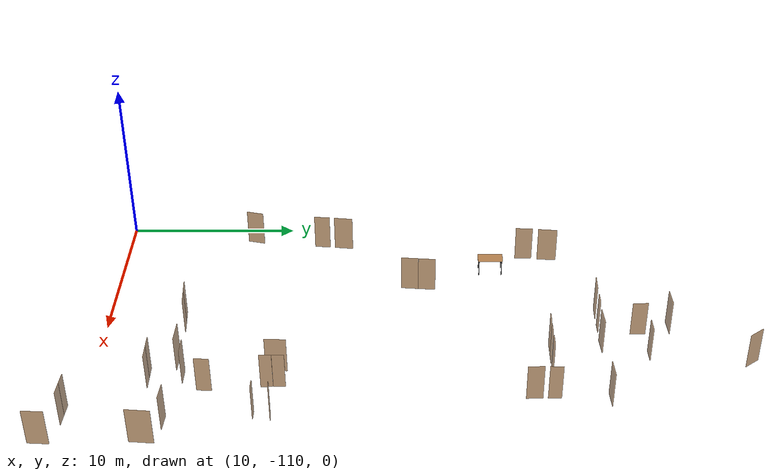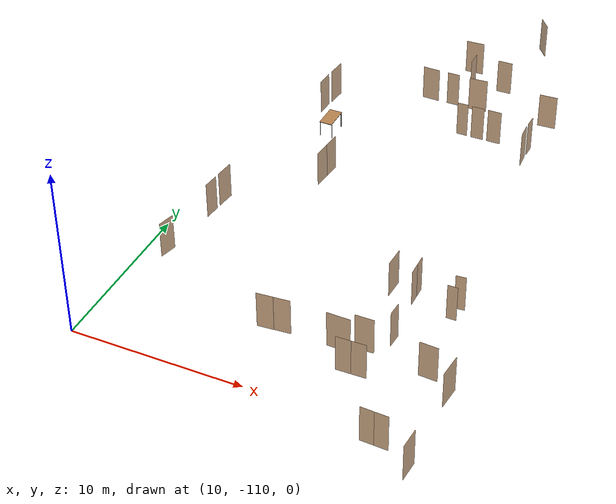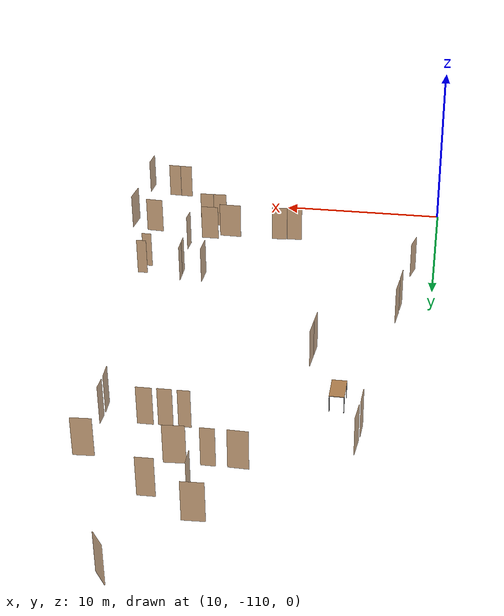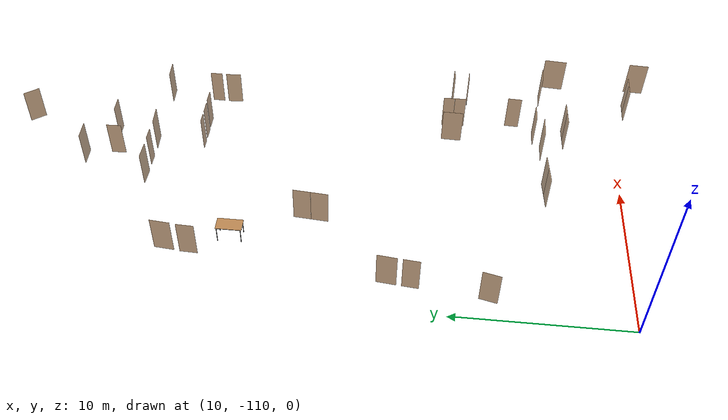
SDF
<sdf version="1.7">
 <world name="world">
  <include><uri>model://sun</uri></include>
  <include>
   <name>OpenRobotics/Table</name>
   <uri>model://Table</uri>
   <pose>14.387834901444366 -87.66442924092927 0.0 0 0 1.5708</pose>
   <static>True</static>
  </include>
  <model name="D52">
   <pose>23.16178288554372 -73.46790534795689 0.0 0 0 2.2272488622468805</pose>
   <link name="right">
    <pose>0 0 1.11 0 0 0</pose>
    <visual name="right_visual">
     <geometry><box><size>1.003676246579932 0.03 2.2</size></box></geometry>
     <material><ambient>0.5 0.25 0 0.6</ambient><diffuse>0.5 0.25 0 0.6</diffuse></material>
    </visual>
    <collision name="right_collision">
     <geometry><box><size>1.003676246579932 0.03 2.2</size></box></geometry>
     <surface><contact><collide_bitmask>0x02</collide_bitmask></contact></surface>
    </collision>
    <inertial>
     <mass>50.0</mass>
     <inertia><ixx>20.17041666666667</ixx><iyy>24.364025033119923</iyy><izz>4.201108366453252</izz></inertia>
    </inertial>
   </link>
   <joint name="right_joint" type="revolute">
    <parent>world</parent>
    <child>right</child>
    <axis><xyz>0 0 1</xyz><limit><lower>0</lower><upper>1.57</upper></limit></axis>
    <pose>0.506838123289966 0 0 0 0 0</pose>
   </joint>
   <plugin name="door" filename="libdoor.so">
    <v_max_door>0.5</v_max_door>
    <a_max_door>0.3</a_max_door>
    <a_nom_door>0.15</a_nom_door>
    <dx_min_door>0.01</dx_min_door>
    <f_max_door>500.0</f_max_door>
    <door name="D52" type="SwingDoor" left_joint_name="empty_joint" right_joint_name="right_joint"/>
   </plugin>
  </model>
  <model name="D53">
   <pose>20.54748252680959 -79.49043257939803 0.0 0 0 -1.553514729007234</pose>
   <link name="right">
    <pose>0 0 1.11 0 0 0</pose>
    <visual name="right_visual">
     <geometry><box><size>0.8756613087539077 0.03 2.2</size></box></geometry>
     <material><ambient>0.5 0.25 0 0.6</ambient><diffuse>0.5 0.25 0 0.6</diffuse></material>
    </visual>
    <collision name="right_collision">
     <geometry><box><size>0.8756613087539077 0.03 2.2</size></box></geometry>
     <surface><contact><collide_bitmask>0x02</collide_bitmask></contact></surface>
    </collision>
    <inertial>
     <mass>50.0</mass>
     <inertia><ixx>20.17041666666667</ixx><iyy>23.361594698535864</iyy><izz>3.1986780318691936</izz></inertia>
    </inertial>
   </link>
   <joint name="right_joint" type="revolute">
    <parent>world</parent>
    <child>right</child>
    <axis><xyz>0 0 1</xyz><limit><lower>0</lower><upper>1.57</upper></limit></axis>
    <pose>0.44283065437695385 0 0 0 0 0</pose>
   </joint>
   <plugin name="door" filename="libdoor.so">
    <v_max_door>0.5</v_max_door>
    <a_max_door>0.3</a_max_door>
    <a_nom_door>0.15</a_nom_door>
    <dx_min_door>0.01</dx_min_door>
    <f_max_door>500.0</f_max_door>
    <door name="D53" type="SwingDoor" left_joint_name="empty_joint" right_joint_name="right_joint"/>
   </plugin>
  </model>
  <model name="D54">
   <pose>19.959548369810665 -77.67765449023244 0.0 0 0 0.04237358821543699</pose>
   <link name="right">
    <pose>0 0 1.11 0 0 0</pose>
    <visual name="right_visual">
     <geometry><box><size>1.1327698787081102 0.03 2.2</size></box></geometry>
     <material><ambient>0.5 0.25 0 0.6</ambient><diffuse>0.5 0.25 0 0.6</diffuse></material>
    </visual>
    <collision name="right_collision">
     <geometry><box><size>1.1327698787081102 0.03 2.2</size></box></geometry>
     <surface><contact><collide_bitmask>0x02</collide_bitmask></contact></surface>
    </collision>
    <inertial>
     <mass>50.0</mass>
     <inertia><ixx>20.17041666666667</ixx><iyy>25.513198325451615</iyy><izz>5.350281658784945</izz></inertia>
    </inertial>
   </link>
   <joint name="right_joint" type="revolute">
    <parent>world</parent>
    <child>right</child>
    <axis><xyz>0 0 -1</xyz><limit><lower>0</lower><upper>1.57</upper></limit></axis>
    <pose>0.5713849393540551 0 0 0 0 0</pose>
   </joint>
   <plugin name="door" filename="libdoor.so">
    <v_max_door>0.5</v_max_door>
    <a_max_door>0.3</a_max_door>
    <a_nom_door>0.15</a_nom_door>
    <dx_min_door>0.01</dx_min_door>
    <f_max_door>500.0</f_max_door>
    <door name="D54" type="SwingDoor" left_joint_name="empty_joint" right_joint_name="right_joint"/>
   </plugin>
  </model>
  <model name="D55">
   <pose>22.493356393128437 -79.11841060944201 0.0 0 0 -3.125994067410913</pose>
   <link name="right">
    <pose>0 0 1.11 0 0 0</pose>
    <visual name="right_visual">
     <geometry><box><size>0.9057967541684167 0.03 2.2</size></box></geometry>
     <material><ambient>0.5 0.25 0 0.6</ambient><diffuse>0.5 0.25 0 0.6</diffuse></material>
    </visual>
    <collision name="right_collision">
     <geometry><box><size>0.9057967541684167 0.03 2.2</size></box></geometry>
     <surface><contact><collide_bitmask>0x02</collide_bitmask></contact></surface>
    </collision>
    <inertial>
     <mass>50.0</mass>
     <inertia><ixx>20.17041666666667</ixx><iyy>23.5852823327585</iyy><izz>3.4223656660918294</izz></inertia>
    </inertial>
   </link>
   <joint name="right_joint" type="revolute">
    <parent>world</parent>
    <child>right</child>
    <axis><xyz>0 0 1</xyz><limit><lower>0</lower><upper>1.57</upper></limit></axis>
    <pose>0.45789837708420833 0 0 0 0 0</pose>
   </joint>
   <plugin name="door" filename="libdoor.so">
    <v_max_door>0.5</v_max_door>
    <a_max_door>0.3</a_max_door>
    <a_nom_door>0.15</a_nom_door>
    <dx_min_door>0.01</dx_min_door>
    <f_max_door>500.0</f_max_door>
    <door name="D55" type="SwingDoor" left_joint_name="empty_joint" right_joint_name="right_joint"/>
   </plugin>
  </model>
  <model name="D56">
   <pose>26.222022119433127 -81.71043386407851 0.0 0 0 0.051731397817296784</pose>
   <link name="right">
    <pose>0 0 1.11 0 0 0</pose>
    <visual name="right_visual">
     <geometry><box><size>1.0884326019941069 0.03 2.2</size></box></geometry>
     <material><ambient>0.5 0.25 0 0.6</ambient><diffuse>0.5 0.25 0 0.6</diffuse></material>
    </visual>
    <collision name="right_collision">
     <geometry><box><size>1.0884326019941069 0.03 2.2</size></box></geometry>
     <surface><contact><collide_bitmask>0x02</collide_bitmask></contact></surface>
    </collision>
    <inertial>
     <mass>50.0</mass>
     <inertia><ixx>20.17041666666667</ixx><iyy>25.10285637118193</iyy><izz>4.9399397045152575</izz></inertia>
    </inertial>
   </link>
   <joint name="right_joint" type="revolute">
    <parent>world</parent>
    <child>right</child>
    <axis><xyz>0 0 1</xyz><limit><lower>0</lower><upper>1.57</upper></limit></axis>
    <pose>0.5492163009970534 0 0 0 0 0</pose>
   </joint>
   <plugin name="door" filename="libdoor.so">
    <v_max_door>0.5</v_max_door>
    <a_max_door>0.3</a_max_door>
    <a_nom_door>0.15</a_nom_door>
    <dx_min_door>0.01</dx_min_door>
    <f_max_door>500.0</f_max_door>
    <door name="D56" type="SwingDoor" left_joint_name="empty_joint" right_joint_name="right_joint"/>
   </plugin>
  </model>
  <model name="D57">
   <pose>21.69795607583101 -81.73662221546044 0.0 0 0 -3.079971809538745</pose>
   <link name="right">
    <pose>0 0 1.11 0 0 0</pose>
    <visual name="right_visual">
     <geometry><box><size>1.1332336975049053 0.03 2.2</size></box></geometry>
     <material><ambient>0.5 0.25 0 0.6</ambient><diffuse>0.5 0.25 0 0.6</diffuse></material>
    </visual>
    <collision name="right_collision">
     <geometry><box><size>1.1332336975049053 0.03 2.2</size></box></geometry>
     <surface><contact><collide_bitmask>0x02</collide_bitmask></contact></surface>
    </collision>
    <inertial>
     <mass>50.0</mass>
     <inertia><ixx>20.17041666666667</ixx><iyy>25.517577554836</iyy><izz>5.35466088816933</izz></inertia>
    </inertial>
   </link>
   <joint name="right_joint" type="revolute">
    <parent>world</parent>
    <child>right</child>
    <axis><xyz>0 0 -1</xyz><limit><lower>0</lower><upper>1.57</upper></limit></axis>
    <pose>0.5716168487524527 0 0 0 0 0</pose>
   </joint>
   <plugin name="door" filename="libdoor.so">
    <v_max_door>0.5</v_max_door>
    <a_max_door>0.3</a_max_door>
    <a_nom_door>0.15</a_nom_door>
    <dx_min_door>0.01</dx_min_door>
    <f_max_door>500.0</f_max_door>
    <door name="D57" type="SwingDoor" left_joint_name="empty_joint" right_joint_name="right_joint"/>
   </plugin>
  </model>
  <model name="D58">
   <pose>20.058293192553833 -81.74608856758337 0.0 0 0 3.141592653589793</pose>
   <link name="right">
    <pose>0 0 1.11 0 0 0</pose>
    <visual name="right_visual">
     <geometry><box><size>0.7458343665082603 0.03 2.2</size></box></geometry>
     <material><ambient>0.5 0.25 0 0.6</ambient><diffuse>0.5 0.25 0 0.6</diffuse></material>
    </visual>
    <collision name="right_collision">
     <geometry><box><size>0.7458343665082603 0.03 2.2</size></box></geometry>
     <surface><contact><collide_bitmask>0x02</collide_bitmask></contact></surface>
    </collision>
    <inertial>
     <mass>50.0</mass>
     <inertia><ixx>20.17041666666667</ixx><iyy>22.48445375943658</iyy><izz>2.3215370927699084</izz></inertia>
    </inertial>
   </link>
   <joint name="right_joint" type="revolute">
    <parent>world</parent>
    <child>right</child>
    <axis><xyz>0 0 -1</xyz><limit><lower>0</lower><upper>1.57</upper></limit></axis>
    <pose>0.37791718325413015 0 0 0 0 0</pose>
   </joint>
   <plugin name="door" filename="libdoor.so">
    <v_max_door>0.5</v_max_door>
    <a_max_door>0.3</a_max_door>
    <a_nom_door>0.15</a_nom_door>
    <dx_min_door>0.01</dx_min_door>
    <f_max_door>500.0</f_max_door>
    <door name="D58" type="SwingDoor" left_joint_name="empty_joint" right_joint_name="right_joint"/>
   </plugin>
  </model>
  <model name="D59">
   <pose>18.587210735705 -81.74569177438062 0.0 0 0 3.111163087370451</pose>
   <link name="right">
    <pose>0 0 1.11 0 0 0</pose>
    <visual name="right_visual">
     <geometry><box><size>1.051970134316209 0.03 2.2</size></box></geometry>
     <material><ambient>0.5 0.25 0 0.6</ambient><diffuse>0.5 0.25 0 0.6</diffuse></material>
    </visual>
    <collision name="right_collision">
     <geometry><box><size>1.051970134316209 0.03 2.2</size></box></geometry>
     <surface><contact><collide_bitmask>0x02</collide_bitmask></contact></surface>
    </collision>
    <inertial>
     <mass>50.0</mass>
     <inertia><ixx>20.17041666666667</ixx><iyy>24.777671514555266</iyy><izz>4.614754847888594</izz></inertia>
    </inertial>
   </link>
   <joint name="right_joint" type="revolute">
    <parent>world</parent>
    <child>right</child>
    <axis><xyz>0 0 1</xyz><limit><lower>0</lower><upper>1.57</upper></limit></axis>
    <pose>0.5309850671581045 0 0 0 0 0</pose>
   </joint>
   <plugin name="door" filename="libdoor.so">
    <v_max_door>0.5</v_max_door>
    <a_max_door>0.3</a_max_door>
    <a_nom_door>0.15</a_nom_door>
    <dx_min_door>0.01</dx_min_door>
    <f_max_door>500.0</f_max_door>
    <door name="D59" type="SwingDoor" left_joint_name="empty_joint" right_joint_name="right_joint"/>
   </plugin>
  </model>
  <model name="D60">
   <pose>26.10547828730916 -84.71347819202771 0.0 0 0 -1.596388787537198</pose>
   <link name="right">
    <pose>0 0 1.11 0 0 0</pose>
    <visual name="right_visual">
     <geometry><box><size>0.7342876711624733 0.03 2.2</size></box></geometry>
     <material><ambient>0.5 0.25 0 0.6</ambient><diffuse>0.5 0.25 0 0.6</diffuse></material>
    </visual>
    <collision name="right_collision">
     <geometry><box><size>0.7342876711624733 0.03 2.2</size></box></geometry>
     <surface><contact><collide_bitmask>0x02</collide_bitmask></contact></surface>
    </collision>
    <inertial>
     <mass>50.0</mass>
     <inertia><ixx>20.17041666666667</ixx><iyy>22.41324326675504</iyy><izz>2.250326600088369</izz></inertia>
    </inertial>
   </link>
   <joint name="right_joint" type="revolute">
    <parent>world</parent>
    <child>right</child>
    <axis><xyz>0 0 1</xyz><limit><lower>0</lower><upper>1.57</upper></limit></axis>
    <pose>0.37214383558123665 0 0 0 0 0</pose>
   </joint>
   <plugin name="door" filename="libdoor.so">
    <v_max_door>0.5</v_max_door>
    <a_max_door>0.3</a_max_door>
    <a_nom_door>0.15</a_nom_door>
    <dx_min_door>0.01</dx_min_door>
    <f_max_door>500.0</f_max_door>
    <door name="D60" type="SwingDoor" left_joint_name="empty_joint" right_joint_name="right_joint"/>
   </plugin>
  </model>
  <model name="D61">
   <pose>26.107745677039198 -85.80998786547421 0.0 0 0 -1.5183741289566897</pose>
   <link name="right">
    <pose>0 0 1.11 0 0 0</pose>
    <visual name="right_visual">
     <geometry><box><size>0.9160270113489877 0.03 2.2</size></box></geometry>
     <material><ambient>0.5 0.25 0 0.6</ambient><diffuse>0.5 0.25 0 0.6</diffuse></material>
    </visual>
    <collision name="right_collision">
     <geometry><box><size>0.9160270113489877 0.03 2.2</size></box></geometry>
     <surface><contact><collide_bitmask>0x02</collide_bitmask></contact></surface>
    </collision>
    <inertial>
     <mass>50.0</mass>
     <inertia><ixx>20.17041666666667</ixx><iyy>23.662939523004</iyy><izz>3.5000228563373272</izz></inertia>
    </inertial>
   </link>
   <joint name="right_joint" type="revolute">
    <parent>world</parent>
    <child>right</child>
    <axis><xyz>0 0 1</xyz><limit><lower>0</lower><upper>1.57</upper></limit></axis>
    <pose>0.46301350567449384 0 0 0 0 0</pose>
   </joint>
   <plugin name="door" filename="libdoor.so">
    <v_max_door>0.5</v_max_door>
    <a_max_door>0.3</a_max_door>
    <a_nom_door>0.15</a_nom_door>
    <dx_min_door>0.01</dx_min_door>
    <f_max_door>500.0</f_max_door>
    <door name="D61" type="SwingDoor" left_joint_name="empty_joint" right_joint_name="right_joint"/>
   </plugin>
  </model>
  <model name="D62">
   <pose>23.836217960743603 -84.65395921161421 0.0 0 0 -0.002274852224701545</pose>
   <link name="right">
    <pose>0 0 1.11 0 0 0</pose>
    <visual name="right_visual">
     <geometry><box><size>0.8372123647697907 0.03 2.2</size></box></geometry>
     <material><ambient>0.5 0.25 0 0.6</ambient><diffuse>0.5 0.25 0 0.6</diffuse></material>
    </visual>
    <collision name="right_collision">
     <geometry><box><size>0.8372123647697907 0.03 2.2</size></box></geometry>
     <surface><contact><collide_bitmask>0x02</collide_bitmask></contact></surface>
    </collision>
    <inertial>
     <mass>50.0</mass>
     <inertia><ixx>20.17041666666667</ixx><iyy>23.087185598847608</iyy><izz>2.924268932180938</izz></inertia>
    </inertial>
   </link>
   <joint name="right_joint" type="revolute">
    <parent>world</parent>
    <child>right</child>
    <axis><xyz>0 0 1</xyz><limit><lower>0</lower><upper>1.57</upper></limit></axis>
    <pose>0.42360618238489534 0 0 0 0 0</pose>
   </joint>
   <plugin name="door" filename="libdoor.so">
    <v_max_door>0.5</v_max_door>
    <a_max_door>0.3</a_max_door>
    <a_nom_door>0.15</a_nom_door>
    <dx_min_door>0.01</dx_min_door>
    <f_max_door>500.0</f_max_door>
    <door name="D62" type="SwingDoor" left_joint_name="empty_joint" right_joint_name="right_joint"/>
   </plugin>
  </model>
  <model name="D63">
   <pose>22.78386570228959 -84.6684138211432 0.0 0 0 0.0</pose>
   <link name="right">
    <pose>0 0 1.11 0 0 0</pose>
    <visual name="right_visual">
     <geometry><box><size>0.7649938097270821 0.03 2.2</size></box></geometry>
     <material><ambient>0.5 0.25 0 0.6</ambient><diffuse>0.5 0.25 0 0.6</diffuse></material>
    </visual>
    <collision name="right_collision">
     <geometry><box><size>0.7649938097270821 0.03 2.2</size></box></geometry>
     <surface><contact><collide_bitmask>0x02</collide_bitmask></contact></surface>
    </collision>
    <inertial>
     <mass>50.0</mass>
     <inertia><ixx>20.17041666666667</ixx><iyy>22.605064703836483</iyy><izz>2.4421480371698134</izz></inertia>
    </inertial>
   </link>
   <joint name="right_joint" type="revolute">
    <parent>world</parent>
    <child>right</child>
    <axis><xyz>0 0 1</xyz><limit><lower>0</lower><upper>1.57</upper></limit></axis>
    <pose>0.38749690486354105 0 0 0 0 0</pose>
   </joint>
   <plugin name="door" filename="libdoor.so">
    <v_max_door>0.5</v_max_door>
    <a_max_door>0.3</a_max_door>
    <a_nom_door>0.15</a_nom_door>
    <dx_min_door>0.01</dx_min_door>
    <f_max_door>500.0</f_max_door>
    <door name="D63" type="SwingDoor" left_joint_name="empty_joint" right_joint_name="right_joint"/>
   </plugin>
  </model>
  <model name="D64">
   <pose>21.80338969827779 -84.66376567219662 0.0 0 0 0.0</pose>
   <link name="right">
    <pose>0 0 1.11 0 0 0</pose>
    <visual name="right_visual">
     <geometry><box><size>0.658086383955778 0.03 2.2</size></box></geometry>
     <material><ambient>0.5 0.25 0 0.6</ambient><diffuse>0.5 0.25 0 0.6</diffuse></material>
    </visual>
    <collision name="right_collision">
     <geometry><box><size>0.658086383955778 0.03 2.2</size></box></geometry>
     <surface><contact><collide_bitmask>0x02</collide_bitmask></contact></surface>
    </collision>
    <inertial>
     <mass>50.0</mass>
     <inertia><ixx>20.17041666666667</ixx><iyy>21.97115703644997</iyy><izz>1.808240369783299</izz></inertia>
    </inertial>
   </link>
   <joint name="right_joint" type="revolute">
    <parent>world</parent>
    <child>right</child>
    <axis><xyz>0 0 1</xyz><limit><lower>0</lower><upper>1.57</upper></limit></axis>
    <pose>0.334043191977889 0 0 0 0 0</pose>
   </joint>
   <plugin name="door" filename="libdoor.so">
    <v_max_door>0.5</v_max_door>
    <a_max_door>0.3</a_max_door>
    <a_nom_door>0.15</a_nom_door>
    <dx_min_door>0.01</dx_min_door>
    <f_max_door>500.0</f_max_door>
    <door name="D64" type="SwingDoor" left_joint_name="empty_joint" right_joint_name="right_joint"/>
   </plugin>
  </model>
  <model name="D66">
   <pose>13.12393518117778 -84.1144338253516 0.0 0 0 -1.664618006042261</pose>
   <link name="right">
    <pose>0 0 1.11 0 0 0</pose>
    <visual name="right_visual">
     <geometry><box><size>1.1456695836033401 0.03 2.2</size></box></geometry>
     <material><ambient>0.5 0.25 0 0.6</ambient><diffuse>0.5 0.25 0 0.6</diffuse></material>
    </visual>
    <collision name="right_collision">
     <geometry><box><size>1.1456695836033401 0.03 2.2</size></box></geometry>
     <surface><contact><collide_bitmask>0x02</collide_bitmask></contact></surface>
    </collision>
    <inertial>
     <mass>50.0</mass>
     <inertia><ixx>20.17041666666667</ixx><iyy>25.63566164497438</iyy><izz>5.472744978307712</izz></inertia>
    </inertial>
   </link>
   <joint name="right_joint" type="revolute">
    <parent>world</parent>
    <child>right</child>
    <axis><xyz>0 0 -1</xyz><limit><lower>0</lower><upper>1.57</upper></limit></axis>
    <pose>0.5778347918016701 0 0 0 0 0</pose>
   </joint>
   <plugin name="door" filename="libdoor.so">
    <v_max_door>0.5</v_max_door>
    <a_max_door>0.3</a_max_door>
    <a_nom_door>0.15</a_nom_door>
    <dx_min_door>0.01</dx_min_door>
    <f_max_door>500.0</f_max_door>
    <door name="D66" type="SwingDoor" left_joint_name="empty_joint" right_joint_name="right_joint"/>
   </plugin>
  </model>
  <model name="D67">
   <pose>12.990215871848774 -85.54203908412694 0.0 0 0 1.5266714472959082</pose>
   <link name="right">
    <pose>0 0 1.11 0 0 0</pose>
    <visual name="right_visual">
     <geometry><box><size>1.0129081934480677 0.03 2.2</size></box></geometry>
     <material><ambient>0.5 0.25 0 0.6</ambient><diffuse>0.5 0.25 0 0.6</diffuse></material>
    </visual>
    <collision name="right_collision">
     <geometry><box><size>1.0129081934480677 0.03 2.2</size></box></geometry>
     <surface><contact><collide_bitmask>0x02</collide_bitmask></contact></surface>
    </collision>
    <inertial>
     <mass>50.0</mass>
     <inertia><ixx>20.17041666666667</ixx><iyy>24.441595868142624</iyy><izz>4.27867920147595</izz></inertia>
    </inertial>
   </link>
   <joint name="right_joint" type="revolute">
    <parent>world</parent>
    <child>right</child>
    <axis><xyz>0 0 1</xyz><limit><lower>0</lower><upper>1.57</upper></limit></axis>
    <pose>0.5114540967240339 0 0 0 0 0</pose>
   </joint>
   <plugin name="door" filename="libdoor.so">
    <v_max_door>0.5</v_max_door>
    <a_max_door>0.3</a_max_door>
    <a_nom_door>0.15</a_nom_door>
    <dx_min_door>0.01</dx_min_door>
    <f_max_door>500.0</f_max_door>
    <door name="D67" type="SwingDoor" left_joint_name="empty_joint" right_joint_name="right_joint"/>
   </plugin>
  </model>
  <model name="D68">
   <pose>11.903455974241428 -96.67197505196582 0.0 0 0 -1.6828701030195223</pose>
   <link name="right">
    <pose>0 0 1.11 0 0 0</pose>
    <visual name="right_visual">
     <geometry><box><size>1.121269064989252 0.03 2.2</size></box></geometry>
     <material><ambient>0.5 0.25 0 0.6</ambient><diffuse>0.5 0.25 0 0.6</diffuse></material>
    </visual>
    <collision name="right_collision">
     <geometry><box><size>1.121269064989252 0.03 2.2</size></box></geometry>
     <surface><contact><collide_bitmask>0x02</collide_bitmask></contact></surface>
    </collision>
    <inertial>
     <mass>50.0</mass>
     <inertia><ixx>20.17041666666667</ixx><iyy>25.40518465042447</iyy><izz>5.242267983757798</izz></inertia>
    </inertial>
   </link>
   <joint name="right_joint" type="revolute">
    <parent>world</parent>
    <child>right</child>
    <axis><xyz>0 0 -1</xyz><limit><lower>0</lower><upper>1.57</upper></limit></axis>
    <pose>0.565634532494626 0 0 0 0 0</pose>
   </joint>
   <plugin name="door" filename="libdoor.so">
    <v_max_door>0.5</v_max_door>
    <a_max_door>0.3</a_max_door>
    <a_nom_door>0.15</a_nom_door>
    <dx_min_door>0.01</dx_min_door>
    <f_max_door>500.0</f_max_door>
    <door name="D68" type="SwingDoor" left_joint_name="empty_joint" right_joint_name="right_joint"/>
   </plugin>
  </model>
  <model name="D69">
   <pose>11.764691722763086 -97.99340978663213 0.0 0 0 1.4711512987692263</pose>
   <link name="right">
    <pose>0 0 1.11 0 0 0</pose>
    <visual name="right_visual">
     <geometry><box><size>0.9450002759026014 0.03 2.2</size></box></geometry>
     <material><ambient>0.5 0.25 0 0.6</ambient><diffuse>0.5 0.25 0 0.6</diffuse></material>
    </visual>
    <collision name="right_collision">
     <geometry><box><size>0.9450002759026014 0.03 2.2</size></box></geometry>
     <surface><contact><collide_bitmask>0x02</collide_bitmask></contact></surface>
    </collision>
    <inertial>
     <mass>50.0</mass>
     <inertia><ixx>20.17041666666667</ixx><iyy>23.887606339399976</iyy><izz>3.7246896727333034</izz></inertia>
    </inertial>
   </link>
   <joint name="right_joint" type="revolute">
    <parent>world</parent>
    <child>right</child>
    <axis><xyz>0 0 1</xyz><limit><lower>0</lower><upper>1.57</upper></limit></axis>
    <pose>0.4775001379513007 0 0 0 0 0</pose>
   </joint>
   <plugin name="door" filename="libdoor.so">
    <v_max_door>0.5</v_max_door>
    <a_max_door>0.3</a_max_door>
    <a_nom_door>0.15</a_nom_door>
    <dx_min_door>0.01</dx_min_door>
    <f_max_door>500.0</f_max_door>
    <door name="D69" type="SwingDoor" left_joint_name="empty_joint" right_joint_name="right_joint"/>
   </plugin>
  </model>
  <model name="D70">
   <pose>23.828452150918224 -99.92443225021921 0.0 0 0 -1.6090097183700514</pose>
   <link name="right">
    <pose>0 0 1.11 0 0 0</pose>
    <visual name="right_visual">
     <geometry><box><size>1.2066625890138791 0.03 2.2</size></box></geometry>
     <material><ambient>0.5 0.25 0 0.6</ambient><diffuse>0.5 0.25 0 0.6</diffuse></material>
    </visual>
    <collision name="right_collision">
     <geometry><box><size>1.2066625890138791 0.03 2.2</size></box></geometry>
     <surface><contact><collide_bitmask>0x02</collide_bitmask></contact></surface>
    </collision>
    <inertial>
     <mass>50.0</mass>
     <inertia><ixx>20.17041666666667</ixx><iyy>26.23347751552366</iyy><izz>6.07056084885699</izz></inertia>
    </inertial>
   </link>
   <joint name="right_joint" type="revolute">
    <parent>world</parent>
    <child>right</child>
    <axis><xyz>0 0 1</xyz><limit><lower>0</lower><upper>1.57</upper></limit></axis>
    <pose>0.6083312945069396 0 0 0 0 0</pose>
   </joint>
   <plugin name="door" filename="libdoor.so">
    <v_max_door>0.5</v_max_door>
    <a_max_door>0.3</a_max_door>
    <a_nom_door>0.15</a_nom_door>
    <dx_min_door>0.01</dx_min_door>
    <f_max_door>500.0</f_max_door>
    <door name="D70" type="SwingDoor" left_joint_name="empty_joint" right_joint_name="right_joint"/>
   </plugin>
  </model>
  <model name="D71">
   <pose>27.629334240124628 -99.95827304194003 0.0 0 0 0.08312523368021976</pose>
   <link name="right">
    <pose>0 0 1.11 0 0 0</pose>
    <visual name="right_visual">
     <geometry><box><size>0.5784923667968813 0.03 2.2</size></box></geometry>
     <material><ambient>0.5 0.25 0 0.6</ambient><diffuse>0.5 0.25 0 0.6</diffuse></material>
    </visual>
    <collision name="right_collision">
     <geometry><box><size>0.5784923667968813 0.03 2.2</size></box></geometry>
     <surface><contact><collide_bitmask>0x02</collide_bitmask></contact></surface>
    </collision>
    <inertial>
     <mass>50.0</mass>
     <inertia><ixx>20.17041666666667</ixx><iyy>21.561055910176076</iyy><izz>1.3981392435094064</izz></inertia>
    </inertial>
   </link>
   <joint name="right_joint" type="revolute">
    <parent>world</parent>
    <child>right</child>
    <axis><xyz>0 0 -1</xyz><limit><lower>0</lower><upper>1.57</upper></limit></axis>
    <pose>0.29424618339844066 0 0 0 0 0</pose>
   </joint>
   <plugin name="door" filename="libdoor.so">
    <v_max_door>0.5</v_max_door>
    <a_max_door>0.3</a_max_door>
    <a_nom_door>0.15</a_nom_door>
    <dx_min_door>0.01</dx_min_door>
    <f_max_door>500.0</f_max_door>
    <door name="D71" type="SwingDoor" left_joint_name="empty_joint" right_joint_name="right_joint"/>
   </plugin>
  </model>
  <model name="D72">
   <pose>27.518855675528517 -100.8774161537543 0.0 0 0 -0.018328680504606624</pose>
   <link name="right">
    <pose>0 0 1.11 0 0 0</pose>
    <visual name="right_visual">
     <geometry><box><size>0.5714563914315185 0.03 2.2</size></box></geometry>
     <material><ambient>0.5 0.25 0 0.6</ambient><diffuse>0.5 0.25 0 0.6</diffuse></material>
    </visual>
    <collision name="right_collision">
     <geometry><box><size>0.5714563914315185 0.03 2.2</size></box></geometry>
     <surface><contact><collide_bitmask>0x02</collide_bitmask></contact></surface>
    </collision>
    <inertial>
     <mass>50.0</mass>
     <inertia><ixx>20.17041666666667</ixx><iyy>21.52734336378306</iyy><izz>1.3644266971163872</izz></inertia>
    </inertial>
   </link>
   <joint name="right_joint" type="revolute">
    <parent>world</parent>
    <child>right</child>
    <axis><xyz>0 0 1</xyz><limit><lower>0</lower><upper>1.57</upper></limit></axis>
    <pose>0.29072819571575925 0 0 0 0 0</pose>
   </joint>
   <plugin name="door" filename="libdoor.so">
    <v_max_door>0.5</v_max_door>
    <a_max_door>0.3</a_max_door>
    <a_nom_door>0.15</a_nom_door>
    <dx_min_door>0.01</dx_min_door>
    <f_max_door>500.0</f_max_door>
    <door name="D72" type="SwingDoor" left_joint_name="empty_joint" right_joint_name="right_joint"/>
   </plugin>
  </model>
  <model name="D73">
   <pose>25.494926917753105 -103.73120955272373 0.0 0 0 -1.6311382532717937</pose>
   <link name="right">
    <pose>0 0 1.11 0 0 0</pose>
    <visual name="right_visual">
     <geometry><box><size>0.8378463154270555 0.03 2.2</size></box></geometry>
     <material><ambient>0.5 0.25 0 0.6</ambient><diffuse>0.5 0.25 0 0.6</diffuse></material>
    </visual>
    <collision name="right_collision">
     <geometry><box><size>0.8378463154270555 0.03 2.2</size></box></geometry>
     <surface><contact><collide_bitmask>0x02</collide_bitmask></contact></surface>
    </collision>
    <inertial>
     <mass>50.0</mass>
     <inertia><ixx>20.17041666666667</ixx><iyy>23.091610201144558</iyy><izz>2.9286935344778873</izz></inertia>
    </inertial>
   </link>
   <joint name="right_joint" type="revolute">
    <parent>world</parent>
    <child>right</child>
    <axis><xyz>0 0 1</xyz><limit><lower>0</lower><upper>1.57</upper></limit></axis>
    <pose>0.42392315771352773 0 0 0 0 0</pose>
   </joint>
   <plugin name="door" filename="libdoor.so">
    <v_max_door>0.5</v_max_door>
    <a_max_door>0.3</a_max_door>
    <a_nom_door>0.15</a_nom_door>
    <dx_min_door>0.01</dx_min_door>
    <f_max_door>500.0</f_max_door>
    <door name="D73" type="SwingDoor" left_joint_name="empty_joint" right_joint_name="right_joint"/>
   </plugin>
  </model>
  <model name="D74">
   <pose>24.384359427980357 -105.00485904882947 0.0 0 0 3.141592653589793</pose>
   <link name="right">
    <pose>0 0 1.11 0 0 0</pose>
    <visual name="right_visual">
     <geometry><box><size>1.0671234912546852 0.03 2.2</size></box></geometry>
     <material><ambient>0.5 0.25 0 0.6</ambient><diffuse>0.5 0.25 0 0.6</diffuse></material>
    </visual>
    <collision name="right_collision">
     <geometry><box><size>1.0671234912546852 0.03 2.2</size></box></geometry>
     <surface><contact><collide_bitmask>0x02</collide_bitmask></contact></surface>
    </collision>
    <inertial>
     <mass>50.0</mass>
     <inertia><ixx>20.17041666666667</ixx><iyy>24.91146893994829</iyy><izz>4.748552273281618</izz></inertia>
    </inertial>
   </link>
   <joint name="right_joint" type="revolute">
    <parent>world</parent>
    <child>right</child>
    <axis><xyz>0 0 1</xyz><limit><lower>0</lower><upper>1.57</upper></limit></axis>
    <pose>0.5385617456273426 0 0 0 0 0</pose>
   </joint>
   <plugin name="door" filename="libdoor.so">
    <v_max_door>0.5</v_max_door>
    <a_max_door>0.3</a_max_door>
    <a_nom_door>0.15</a_nom_door>
    <dx_min_door>0.01</dx_min_door>
    <f_max_door>500.0</f_max_door>
    <door name="D74" type="SwingDoor" left_joint_name="empty_joint" right_joint_name="right_joint"/>
   </plugin>
  </model>
  <model name="D75">
   <pose>23.136048012107786 -105.45589955087735 0.0 0 0 3.1148977325831257</pose>
   <link name="right">
    <pose>0 0 1.11 0 0 0</pose>
    <visual name="right_visual">
     <geometry><box><size>1.3449079930291716 0.03 2.2</size></box></geometry>
     <material><ambient>0.5 0.25 0 0.6</ambient><diffuse>0.5 0.25 0 0.6</diffuse></material>
    </visual>
    <collision name="right_collision">
     <geometry><box><size>1.3449079930291716 0.03 2.2</size></box></geometry>
     <surface><contact><collide_bitmask>0x02</collide_bitmask></contact></surface>
    </collision>
    <inertial>
     <mass>50.0</mass>
     <inertia><ixx>20.17041666666667</ixx><iyy>27.703239623807313</iyy><izz>7.540322957140644</izz></inertia>
    </inertial>
   </link>
   <joint name="right_joint" type="revolute">
    <parent>world</parent>
    <child>right</child>
    <axis><xyz>0 0 -1</xyz><limit><lower>0</lower><upper>1.57</upper></limit></axis>
    <pose>0.6774539965145858 0 0 0 0 0</pose>
   </joint>
   <plugin name="door" filename="libdoor.so">
    <v_max_door>0.5</v_max_door>
    <a_max_door>0.3</a_max_door>
    <a_nom_door>0.15</a_nom_door>
    <dx_min_door>0.01</dx_min_door>
    <f_max_door>500.0</f_max_door>
    <door name="D75" type="SwingDoor" left_joint_name="empty_joint" right_joint_name="right_joint"/>
   </plugin>
  </model>
  <model name="D76">
   <pose>28.10968075443324 -105.55447431939075 0.0 0 0 3.0812740085195487</pose>
   <link name="right">
    <pose>0 0 1.11 0 0 0</pose>
    <visual name="right_visual">
     <geometry><box><size>1.0506866181916024 0.03 2.2</size></box></geometry>
     <material><ambient>0.5 0.25 0 0.6</ambient><diffuse>0.5 0.25 0 0.6</diffuse></material>
    </visual>
    <collision name="right_collision">
     <geometry><box><size>1.0506866181916024 0.03 2.2</size></box></geometry>
     <surface><contact><collide_bitmask>0x02</collide_bitmask></contact></surface>
    </collision>
    <inertial>
     <mass>50.0</mass>
     <inertia><ixx>20.17041666666667</ixx><iyy>24.766426540195447</iyy><izz>4.6035098735287745</izz></inertia>
    </inertial>
   </link>
   <joint name="right_joint" type="revolute">
    <parent>world</parent>
    <child>right</child>
    <axis><xyz>0 0 1</xyz><limit><lower>0</lower><upper>1.57</upper></limit></axis>
    <pose>0.5303433090958012 0 0 0 0 0</pose>
   </joint>
   <plugin name="door" filename="libdoor.so">
    <v_max_door>0.5</v_max_door>
    <a_max_door>0.3</a_max_door>
    <a_nom_door>0.15</a_nom_door>
    <dx_min_door>0.01</dx_min_door>
    <f_max_door>500.0</f_max_door>
    <door name="D76" type="SwingDoor" left_joint_name="empty_joint" right_joint_name="right_joint"/>
   </plugin>
  </model>
  <model name="D77">
   <pose>29.601793251028177 -106.47520460401604 0.0 0 0 1.4852933933607384</pose>
   <link name="right">
    <pose>0 0 1.11 0 0 0</pose>
    <visual name="right_visual">
     <geometry><box><size>1.3573562760440092 0.03 2.2</size></box></geometry>
     <material><ambient>0.5 0.25 0 0.6</ambient><diffuse>0.5 0.25 0 0.6</diffuse></material>
    </visual>
    <collision name="right_collision">
     <geometry><box><size>1.3573562760440092 0.03 2.2</size></box></geometry>
     <surface><contact><collide_bitmask>0x02</collide_bitmask></contact></surface>
    </collision>
    <inertial>
     <mass>50.0</mass>
     <inertia><ixx>20.17041666666667</ixx><iyy>27.84340025048359</iyy><izz>7.680483583816919</izz></inertia>
    </inertial>
   </link>
   <joint name="right_joint" type="revolute">
    <parent>world</parent>
    <child>right</child>
    <axis><xyz>0 0 1</xyz><limit><lower>0</lower><upper>1.57</upper></limit></axis>
    <pose>0.6836781380220046 0 0 0 0 0</pose>
   </joint>
   <plugin name="door" filename="libdoor.so">
    <v_max_door>0.5</v_max_door>
    <a_max_door>0.3</a_max_door>
    <a_nom_door>0.15</a_nom_door>
    <dx_min_door>0.01</dx_min_door>
    <f_max_door>500.0</f_max_door>
    <door name="D77" type="SwingDoor" left_joint_name="empty_joint" right_joint_name="right_joint"/>
   </plugin>
  </model>
  <model name="D78">
   <pose>29.69543644687876 -111.8139437776209 0.0 0 0 1.5121078199701095</pose>
   <link name="right">
    <pose>0 0 1.11 0 0 0</pose>
    <visual name="right_visual">
     <geometry><box><size>1.1767543406028764 0.03 2.2</size></box></geometry>
     <material><ambient>0.5 0.25 0 0.6</ambient><diffuse>0.5 0.25 0 0.6</diffuse></material>
    </visual>
    <collision name="right_collision">
     <geometry><box><size>1.1767543406028764 0.03 2.2</size></box></geometry>
     <surface><contact><collide_bitmask>0x02</collide_bitmask></contact></surface>
    </collision>
    <inertial>
     <mass>50.0</mass>
     <inertia><ixx>20.17041666666667</ixx><iyy>25.93646157553213</iyy><izz>5.7735449088654605</izz></inertia>
    </inertial>
   </link>
   <joint name="right_joint" type="revolute">
    <parent>world</parent>
    <child>right</child>
    <axis><xyz>0 0 1</xyz><limit><lower>0</lower><upper>1.57</upper></limit></axis>
    <pose>0.5933771703014382 0 0 0 0 0</pose>
   </joint>
   <plugin name="door" filename="libdoor.so">
    <v_max_door>0.5</v_max_door>
    <a_max_door>0.3</a_max_door>
    <a_nom_door>0.15</a_nom_door>
    <dx_min_door>0.01</dx_min_door>
    <f_max_door>500.0</f_max_door>
    <door name="D78" type="SwingDoor" left_joint_name="empty_joint" right_joint_name="right_joint"/>
   </plugin>
  </model>
  <model name="D79">
   <pose>11.265695927924913 -102.18178878070208 0.0 0 0 1.3294748684009614</pose>
   <link name="right">
    <pose>0 0 1.11 0 0 0</pose>
    <visual name="right_visual">
     <geometry><box><size>1.0350527540479293 0.03 2.2</size></box></geometry>
     <material><ambient>0.5 0.25 0 0.6</ambient><diffuse>0.5 0.25 0 0.6</diffuse></material>
    </visual>
    <collision name="right_collision">
     <geometry><box><size>1.0350527540479293 0.03 2.2</size></box></geometry>
     <surface><contact><collide_bitmask>0x02</collide_bitmask></contact></surface>
    </collision>
    <inertial>
     <mass>50.0</mass>
     <inertia><ixx>20.17041666666667</ixx><iyy>24.63055918192585</iyy><izz>4.46764251525918</izz></inertia>
    </inertial>
   </link>
   <joint name="right_joint" type="revolute">
    <parent>world</parent>
    <child>right</child>
    <axis><xyz>0 0 1</xyz><limit><lower>0</lower><upper>1.57</upper></limit></axis>
    <pose>0.5225263770239646 0 0 0 0 0</pose>
   </joint>
   <plugin name="door" filename="libdoor.so">
    <v_max_door>0.5</v_max_door>
    <a_max_door>0.3</a_max_door>
    <a_nom_door>0.15</a_nom_door>
    <dx_min_door>0.01</dx_min_door>
    <f_max_door>500.0</f_max_door>
    <door name="D79" type="SwingDoor" left_joint_name="empty_joint" right_joint_name="right_joint"/>
   </plugin>
  </model>
  <model name="DH11">
   <pose>16.173914476538762 -92.0446860909037 0.0 0 0 1.4867520066815476</pose>
   <link name="right">
    <pose>0.5108320504496211 0 1.11 0 0 0</pose>
    <visual name="right_visual">
     <geometry><box><size>1.0116641008992422 0.03 2.2</size></box></geometry>
     <material><ambient>0.5 0.25 0 0.6</ambient><diffuse>0.5 0.25 0 0.6</diffuse></material>
    </visual>
    <collision name="right_collision">
     <geometry><box><size>1.0116641008992422 0.03 2.2</size></box></geometry>
     <surface><contact><collide_bitmask>0x02</collide_bitmask></contact></surface>
    </collision>
    <inertial>
     <mass>50.0</mass>
     <inertia><ixx>20.17041666666667</ixx><iyy>24.431101054367804</iyy><izz>4.268184387701133</izz></inertia>
    </inertial>
   </link>
   <joint name="right_joint" type="revolute">
    <parent>world</parent>
    <child>right</child>
    <axis><xyz>0 0 -1</xyz><limit><lower>0</lower><upper>1.57</upper></limit></axis>
    <pose>0.5108320504496211 0 0 0 0 0</pose>
   </joint>
   <link name="left">
    <pose>-0.5108320504496211 0 1.11 0 0 0</pose>
    <visual name="left_visual">
     <geometry><box><size>1.0116641008992422 0.03 2.2</size></box></geometry>
     <material><ambient>0.5 0.25 0 0.6</ambient><diffuse>0.5 0.25 0 0.6</diffuse></material>
    </visual>
    <collision name="left_collision">
     <geometry><box><size>1.0116641008992422 0.03 2.2</size></box></geometry>
     <surface><contact><collide_bitmask>0x02</collide_bitmask></contact></surface>
    </collision>
    <inertial>
     <mass>50.0</mass>
     <inertia><ixx>20.17041666666667</ixx><iyy>24.431101054367804</iyy><izz>4.268184387701133</izz></inertia>
    </inertial>
   </link>
   <joint name="left_joint" type="revolute">
    <parent>world</parent>
    <child>left</child>
    <axis><xyz>0 0 -1</xyz><limit><lower>-1.57</lower><upper>0</upper></limit></axis>
    <pose>-0.5108320504496211 0 0 0 0 0</pose>
   </joint>
   <plugin name="door" filename="libdoor.so">
    <v_max_door>0.5</v_max_door>
    <a_max_door>0.3</a_max_door>
    <a_nom_door>0.15</a_nom_door>
    <dx_min_door>0.01</dx_min_door>
    <f_max_door>500.0</f_max_door>
    <door name="DH11" type="DoubleSwingDoor" left_joint_name="left_joint" right_joint_name="right_joint"/>
   </plugin>
  </model>
  <model name="DH12">
   <pose>25.18106349437256 -100.00118339258101 0.0 0 0 1.581509613954887</pose>
   <link name="right">
    <pose>0.343926074090123 0 1.11 0 0 0</pose>
    <visual name="right_visual">
     <geometry><box><size>0.677852148180246 0.03 2.2</size></box></geometry>
     <material><ambient>0.5 0.25 0 0.6</ambient><diffuse>0.5 0.25 0 0.6</diffuse></material>
    </visual>
    <collision name="right_collision">
     <geometry><box><size>0.677852148180246 0.03 2.2</size></box></geometry>
     <surface><contact><collide_bitmask>0x02</collide_bitmask></contact></surface>
    </collision>
    <inertial>
     <mass>50.0</mass>
     <inertia><ixx>20.17041666666667</ixx><iyy>22.081181394969065</iyy><izz>1.9182647283023924</izz></inertia>
    </inertial>
   </link>
   <joint name="right_joint" type="revolute">
    <parent>world</parent>
    <child>right</child>
    <axis><xyz>0 0 -1</xyz><limit><lower>0</lower><upper>1.57</upper></limit></axis>
    <pose>0.343926074090123 0 0 0 0 0</pose>
   </joint>
   <link name="left">
    <pose>-0.343926074090123 0 1.11 0 0 0</pose>
    <visual name="left_visual">
     <geometry><box><size>0.677852148180246 0.03 2.2</size></box></geometry>
     <material><ambient>0.5 0.25 0 0.6</ambient><diffuse>0.5 0.25 0 0.6</diffuse></material>
    </visual>
    <collision name="left_collision">
     <geometry><box><size>0.677852148180246 0.03 2.2</size></box></geometry>
     <surface><contact><collide_bitmask>0x02</collide_bitmask></contact></surface>
    </collision>
    <inertial>
     <mass>50.0</mass>
     <inertia><ixx>20.17041666666667</ixx><iyy>22.081181394969065</iyy><izz>1.9182647283023924</izz></inertia>
    </inertial>
   </link>
   <joint name="left_joint" type="revolute">
    <parent>world</parent>
    <child>left</child>
    <axis><xyz>0 0 -1</xyz><limit><lower>-1.57</lower><upper>0</upper></limit></axis>
    <pose>-0.343926074090123 0 0 0 0 0</pose>
   </joint>
   <plugin name="door" filename="libdoor.so">
    <v_max_door>0.5</v_max_door>
    <a_max_door>0.3</a_max_door>
    <a_nom_door>0.15</a_nom_door>
    <dx_min_door>0.01</dx_min_door>
    <f_max_door>500.0</f_max_door>
    <door name="DH12" type="DoubleSwingDoor" left_joint_name="left_joint" right_joint_name="right_joint"/>
   </plugin>
  </model>
  <model name="DH13">
   <pose>19.47636761833951 -105.51366130425006 0.0 0 0 -3.0619807026696106</pose>
   <link name="right">
    <pose>0.4768402382384135 0 1.11 0 0 0</pose>
    <visual name="right_visual">
     <geometry><box><size>0.943680476476827 0.03 2.2</size></box></geometry>
     <material><ambient>0.5 0.25 0 0.6</ambient><diffuse>0.5 0.25 0 0.6</diffuse></material>
    </visual>
    <collision name="right_collision">
     <geometry><box><size>0.943680476476827 0.03 2.2</size></box></geometry>
     <surface><contact><collide_bitmask>0x02</collide_bitmask></contact></surface>
    </collision>
    <inertial>
     <mass>50.0</mass>
     <inertia><ixx>20.17041666666667</ixx><iyy>23.877220173681383</iyy><izz>3.7143035070147135</izz></inertia>
    </inertial>
   </link>
   <joint name="right_joint" type="revolute">
    <parent>world</parent>
    <child>right</child>
    <axis><xyz>0 0 -1</xyz><limit><lower>0</lower><upper>1.57</upper></limit></axis>
    <pose>0.4768402382384135 0 0 0 0 0</pose>
   </joint>
   <link name="left">
    <pose>-0.4768402382384135 0 1.11 0 0 0</pose>
    <visual name="left_visual">
     <geometry><box><size>0.943680476476827 0.03 2.2</size></box></geometry>
     <material><ambient>0.5 0.25 0 0.6</ambient><diffuse>0.5 0.25 0 0.6</diffuse></material>
    </visual>
    <collision name="left_collision">
     <geometry><box><size>0.943680476476827 0.03 2.2</size></box></geometry>
     <surface><contact><collide_bitmask>0x02</collide_bitmask></contact></surface>
    </collision>
    <inertial>
     <mass>50.0</mass>
     <inertia><ixx>20.17041666666667</ixx><iyy>23.877220173681383</iyy><izz>3.7143035070147135</izz></inertia>
    </inertial>
   </link>
   <joint name="left_joint" type="revolute">
    <parent>world</parent>
    <child>left</child>
    <axis><xyz>0 0 -1</xyz><limit><lower>-1.57</lower><upper>0</upper></limit></axis>
    <pose>-0.4768402382384135 0 0 0 0 0</pose>
   </joint>
   <plugin name="door" filename="libdoor.so">
    <v_max_door>0.5</v_max_door>
    <a_max_door>0.3</a_max_door>
    <a_nom_door>0.15</a_nom_door>
    <dx_min_door>0.01</dx_min_door>
    <f_max_door>500.0</f_max_door>
    <door name="DH13" type="DoubleSwingDoor" left_joint_name="left_joint" right_joint_name="right_joint"/>
   </plugin>
  </model>
  <model name="DH14">
   <pose>24.48457805404805 -106.88123741992266 0.0 0 0 -3.1230750093443955</pose>
   <link name="right">
    <pose>0.42245879348996496 0 1.11 0 0 0</pose>
    <visual name="right_visual">
     <geometry><box><size>0.8349175869799299 0.03 2.2</size></box></geometry>
     <material><ambient>0.5 0.25 0 0.6</ambient><diffuse>0.5 0.25 0 0.6</diffuse></material>
    </visual>
    <collision name="right_collision">
     <geometry><box><size>0.8349175869799299 0.03 2.2</size></box></geometry>
     <surface><contact><collide_bitmask>0x02</collide_bitmask></contact></surface>
    </collision>
    <inertial>
     <mass>50.0</mass>
     <inertia><ixx>20.17041666666667</ixx><iyy>23.07119740436829</iyy><izz>2.9082807377016207</izz></inertia>
    </inertial>
   </link>
   <joint name="right_joint" type="revolute">
    <parent>world</parent>
    <child>right</child>
    <axis><xyz>0 0 -1</xyz><limit><lower>0</lower><upper>1.57</upper></limit></axis>
    <pose>0.42245879348996496 0 0 0 0 0</pose>
   </joint>
   <link name="left">
    <pose>-0.42245879348996496 0 1.11 0 0 0</pose>
    <visual name="left_visual">
     <geometry><box><size>0.8349175869799299 0.03 2.2</size></box></geometry>
     <material><ambient>0.5 0.25 0 0.6</ambient><diffuse>0.5 0.25 0 0.6</diffuse></material>
    </visual>
    <collision name="left_collision">
     <geometry><box><size>0.8349175869799299 0.03 2.2</size></box></geometry>
     <surface><contact><collide_bitmask>0x02</collide_bitmask></contact></surface>
    </collision>
    <inertial>
     <mass>50.0</mass>
     <inertia><ixx>20.17041666666667</ixx><iyy>23.07119740436829</iyy><izz>2.9082807377016207</izz></inertia>
    </inertial>
   </link>
   <joint name="left_joint" type="revolute">
    <parent>world</parent>
    <child>left</child>
    <axis><xyz>0 0 -1</xyz><limit><lower>-1.57</lower><upper>0</upper></limit></axis>
    <pose>-0.42245879348996496 0 0 0 0 0</pose>
   </joint>
   <plugin name="door" filename="libdoor.so">
    <v_max_door>0.5</v_max_door>
    <a_max_door>0.3</a_max_door>
    <a_nom_door>0.15</a_nom_door>
    <dx_min_door>0.01</dx_min_door>
    <f_max_door>500.0</f_max_door>
    <door name="DH14" type="DoubleSwingDoor" left_joint_name="left_joint" right_joint_name="right_joint"/>
   </plugin>
  </model>
  <model name="DH15">
   <pose>27.525771214205136 -110.92558048139192 0.0 0 0 3.099620255170865</pose>
   <link name="right">
    <pose>0.386363376326958 0 1.11 0 0 0</pose>
    <visual name="right_visual">
     <geometry><box><size>0.762726752653916 0.03 2.2</size></box></geometry>
     <material><ambient>0.5 0.25 0 0.6</ambient><diffuse>0.5 0.25 0 0.6</diffuse></material>
    </visual>
    <collision name="right_collision">
     <geometry><box><size>0.762726752653916 0.03 2.2</size></box></geometry>
     <surface><contact><collide_bitmask>0x02</collide_bitmask></contact></surface>
    </collision>
    <inertial>
     <mass>50.0</mass>
     <inertia><ixx>20.17041666666667</ixx><iyy>22.590633746724954</iyy><izz>2.4277170800582835</izz></inertia>
    </inertial>
   </link>
   <joint name="right_joint" type="revolute">
    <parent>world</parent>
    <child>right</child>
    <axis><xyz>0 0 -1</xyz><limit><lower>0</lower><upper>1.57</upper></limit></axis>
    <pose>0.386363376326958 0 0 0 0 0</pose>
   </joint>
   <link name="left">
    <pose>-0.386363376326958 0 1.11 0 0 0</pose>
    <visual name="left_visual">
     <geometry><box><size>0.762726752653916 0.03 2.2</size></box></geometry>
     <material><ambient>0.5 0.25 0 0.6</ambient><diffuse>0.5 0.25 0 0.6</diffuse></material>
    </visual>
    <collision name="left_collision">
     <geometry><box><size>0.762726752653916 0.03 2.2</size></box></geometry>
     <surface><contact><collide_bitmask>0x02</collide_bitmask></contact></surface>
    </collision>
    <inertial>
     <mass>50.0</mass>
     <inertia><ixx>20.17041666666667</ixx><iyy>22.590633746724954</iyy><izz>2.4277170800582835</izz></inertia>
    </inertial>
   </link>
   <joint name="left_joint" type="revolute">
    <parent>world</parent>
    <child>left</child>
    <axis><xyz>0 0 -1</xyz><limit><lower>-1.57</lower><upper>0</upper></limit></axis>
    <pose>-0.386363376326958 0 0 0 0 0</pose>
   </joint>
   <plugin name="door" filename="libdoor.so">
    <v_max_door>0.5</v_max_door>
    <a_max_door>0.3</a_max_door>
    <a_nom_door>0.15</a_nom_door>
    <dx_min_door>0.01</dx_min_door>
    <f_max_door>500.0</f_max_door>
    <door name="DH15" type="DoubleSwingDoor" left_joint_name="left_joint" right_joint_name="right_joint"/>
   </plugin>
  </model>
 </world>
</sdf>
